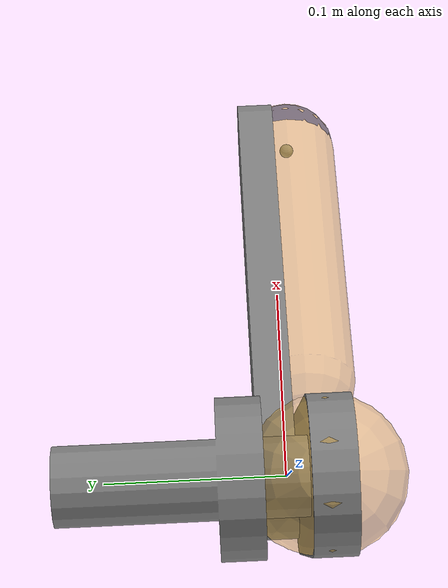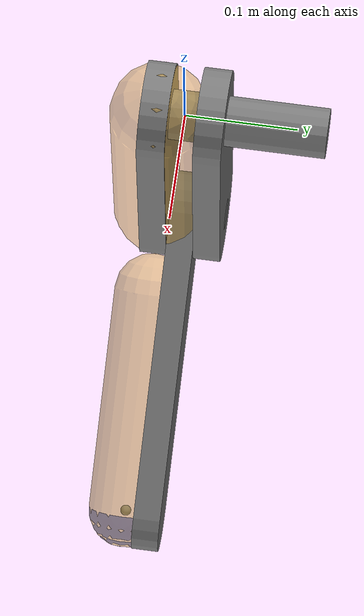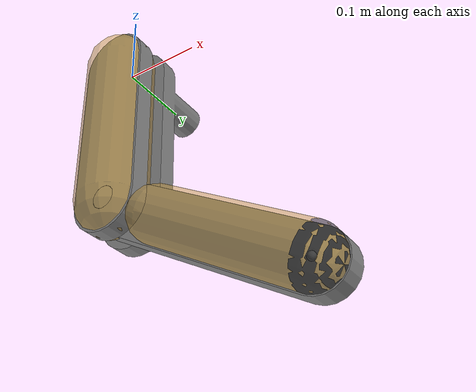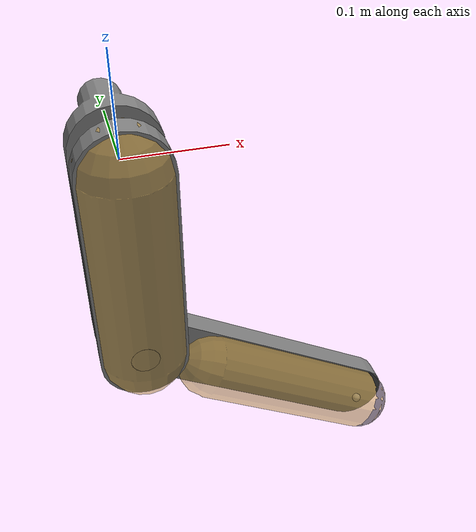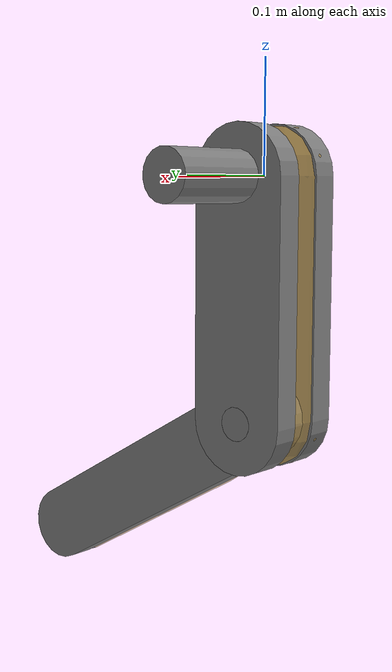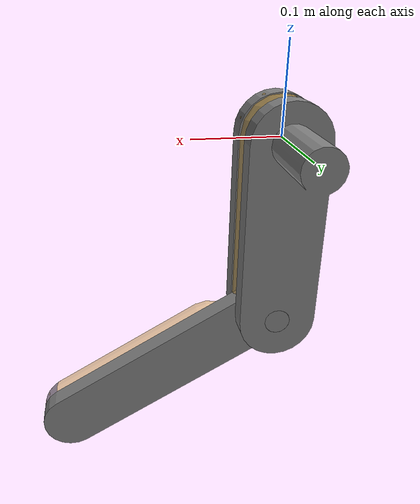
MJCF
<mujoco model="cheetah">
  <compiler angle="radian" meshdir="meshes/" inertiafromgeom="false"/>

  <asset>
    <mesh name="fr_hip" file="fr_hip.STL"/>
    <mesh name="fr_knee" file="fr_knee.STL"/>
  </asset>

  <worldbody>
    <body name="fr_hip">
      <inertial pos="0 0.0083713 -0.088755" quat="0.997892 -0.0648985 0 0" mass="0.42319" diaginertia="0.0034493 0.00319477 0.000746558"/>
      <joint name="fr_hip_joint" pos="0 0 0" axis="0 1 0"/>
      <geom type="mesh" mesh="fr_hip"/>
      <geom type="capsule" size="0.045" fromto="0 -0.0225 0 0 -0.0225 -0.21" group="0" contype="1" conaffinity="1"  rgba="0.85 0.65 0.25 0.5"/>
      <body name="fr_knee" pos="0 0 -0.21" quat="0.965926 0 0.25882 0">
        <inertial pos="0.13698 0 0" quat="0.5 0.5 0.5 0.5" mass="0.19172" diaginertia="0.0020898 0.0020349 8.8217e-05"/>
        <joint name="fr_knee_joint" pos="0 0 0" axis="0 1 0"/>
        <geom type="mesh" mesh="fr_knee"/>
        <geom type="capsule" size="0.035" fromto="0.08 -0.0225 0 0.29 -0.0225 0" group="0" contype="1" conaffinity="1"  rgba="0.85 0.65 0.25 0.5"/>
        <body name="fr_foot" pos="0.29 -0.0225 0">
          <inertial pos="0 0 0" mass="0.001" diaginertia="0.001 0.001 0.001"/>
          <geom group="1" type="sphere" size="0.035" solimp="0.015 1 0.031" friction="0.8 0.02 0.01" rgba="0 0 0 0.5"/>
          <site name="fr_foot"/>
        </body>
      </body>
    </body>
  </worldbody>

  <actuator>
    <general name="fr_hip_act" joint="fr_hip_joint"/>
    <general name="fr_knee_act" joint="fr_knee_joint"/>
  </actuator>

  <sensor>
    <jointpos joint="fr_hip_joint" name="fr_hip_pos"/>
    <jointpos joint="fr_knee_joint" name="fr_knee_pos"/>
  </sensor>
</mujoco>
